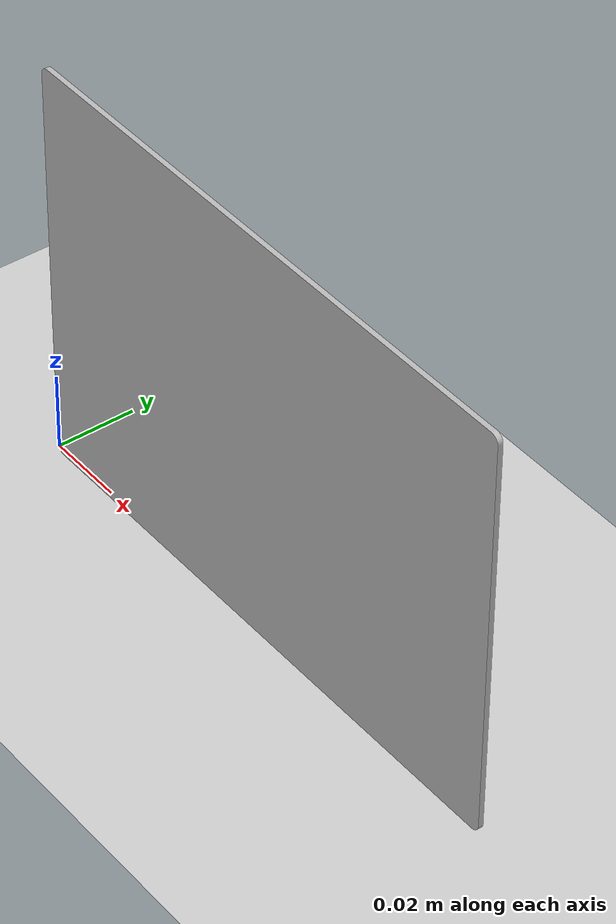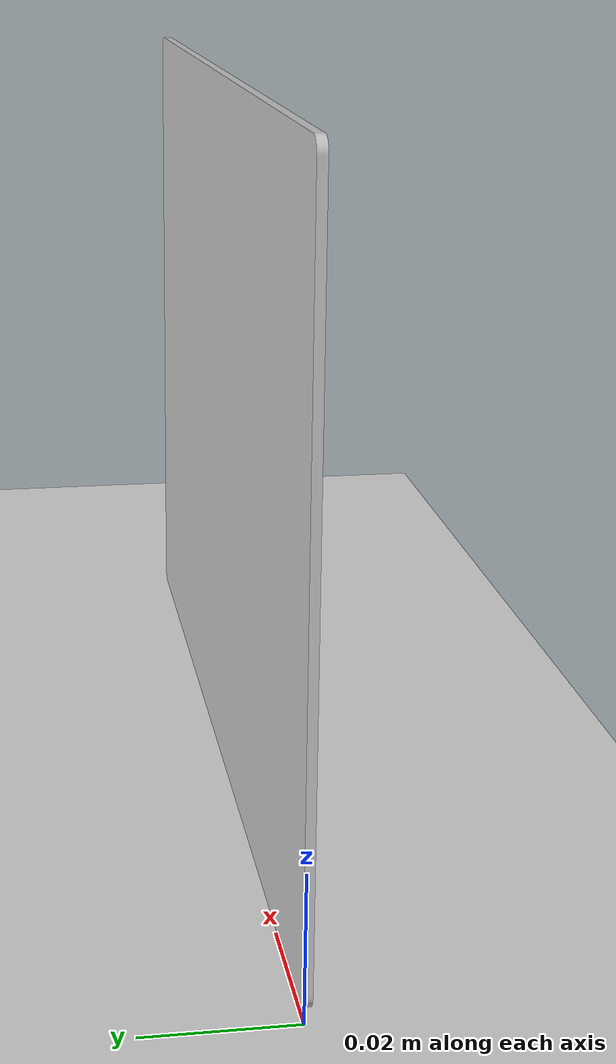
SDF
<?xml version="1.0" ?>
<sdf version="1.5">
  <world name="default">

    <!-- A global light source -->
    <include>
      <uri>model://sun</uri>
    </include>

    <!-- A ground plane -->
    <include>
      <uri>model://ground_plane</uri>
    </include>

    <!-- A sign confined space-->
    <include>
      <static>true</static>
        <pose>0 0 0 0 0 0</pose>
      <uri>model://sign_confined_space</uri>
    </include>

  </world>
</sdf>

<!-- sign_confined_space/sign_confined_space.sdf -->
<sdf version="1.5">
  <model name="sign_confined_space">
    <static>true</static>
    <link name="sign_confined_space_link">
        <collision name="sign_confined_space_collision">
         <geometry>
            <mesh>
                <uri>model://sign_confined_space/meshes/model.dae</uri>
                <scale>0.5 0.5 0.5</scale>
            </mesh>
        </geometry>
      </collision>

      <visual name="sign_confined_space_mesh">
        <cast_shadows>false</cast_shadows>
        <geometry>
            <mesh>
                <uri>model://sign_confined_space/meshes/model.dae</uri>
                <scale>0.5 0.5 0.5</scale>
            </mesh>
        </geometry>
      </visual>
    </link>
  </model>
</sdf>
